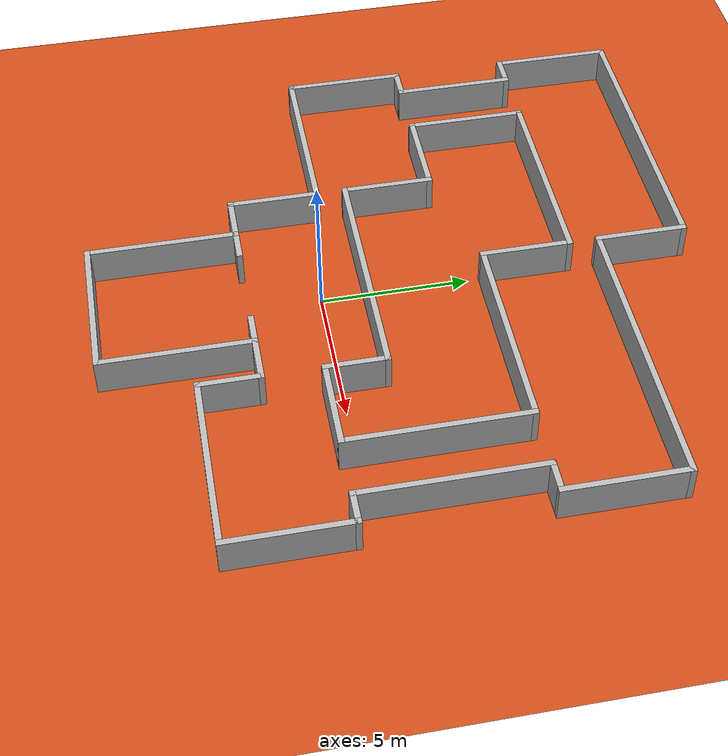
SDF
<?xml version="1.0" ?>
<sdf version="1.6">
  <world name="mars_zigzag_watertight">

    <physics name="1ms" type="ignored"><max_step_size>0.001</max_step_size><real_time_factor>1.0</real_time_factor></physics>
    <light type="directional" name="sun"><cast_shadows>true</cast_shadows><pose>0 0 10 0 0 0</pose><diffuse>0.9 0.4 0.2 1</diffuse><specular>0.2 0.1 0.1 1</specular><direction>-1 -1 -1</direction></light>

    <model name="ground_plane">
      <static>true</static>
      <link name="link">
        <collision name="c"><geometry><plane><normal>0 0 1</normal><size>100 100</size></plane></geometry></collision>
        <visual name="v"><geometry><plane><normal>0 0 1</normal><size>100 100</size></plane></geometry><material><ambient>0.4 0.2 0.1 1</ambient><diffuse>0.8 0.3 0.1 1</diffuse></material></visual>
      </link>
    </model>

    <model name="spawn_room">
      <static>true</static>
      <model name="rm_s"><pose>0 -7.5 0.5 0 0 0</pose><link name="l"><collision name="c"><geometry><box><size>5.2 0.2 1.5</size></box></geometry></collision><visual name="v"><geometry><box><size>5.2 0.2 1.5</size></box></geometry></visual></link></model>
      <model name="rm_w"><pose>-2.5 -5 0.5 0 0 1.5708</pose><link name="l"><collision name="c"><geometry><box><size>5.2 0.2 1.5</size></box></geometry></collision><visual name="v"><geometry><box><size>5.2 0.2 1.5</size></box></geometry></visual></link></model>
      <model name="rm_e"><pose>2.5 -5 0.5 0 0 1.5708</pose><link name="l"><collision name="c"><geometry><box><size>5.2 0.2 1.5</size></box></geometry></collision><visual name="v"><geometry><box><size>5.2 0.2 1.5</size></box></geometry></visual></link></model>
      <model name="rm_n_l"><pose>-2 -2.5 0.5 0 0 0</pose><link name="l"><collision name="c"><geometry><box><size>1.2 0.2 1.5</size></box></geometry></collision><visual name="v"><geometry><box><size>1.2 0.2 1.5</size></box></geometry></visual></link></model>

      <model name="rm_n_r"><pose>2 -2.5 0.5 0 0 0</pose><link name="l"><collision name="c"><geometry><box><size>1.2 0.2 1.5</size></box></geometry></collision><visual name="v"><geometry><box><size>1.2 0.2 1.5</size></box></geometry></visual></link></model>
    </model>

    <model name="hallway_1">
      <static>true</static>
      <model name="h1_mid_n"><pose>0 1.5 0.5 0 0 0</pose><link name="l"><collision name="c"><geometry><box><size>8.2 0.2 1.5</size></box></geometry></collision><visual name="v"><geometry><box><size>8.2 0.2 1.5</size></box></geometry></visual></link></model>
      <model name="h1_mid_s_l"><pose>-3.25 -2.5 0.5 0 0 0</pose><link name="l"><collision name="c"><geometry><box><size>1.7 0.2 1.5</size></box></geometry></collision><visual name="v"><geometry><box><size>1.7 0.2 1.5</size></box></geometry></visual></link></model>
      <model name="h1_mid_s_r"><pose>3.25 -2.5 0.5 0 0 0</pose><link name="l"><collision name="c"><geometry><box><size>1.7 0.2 1.5</size></box></geometry></collision><visual name="v"><geometry><box><size>1.7 0.2 1.5</size></box></geometry></visual></link></model>

      <model name="h1_zig_w_s"><pose>-4 -1 0.5 0 0 1.5708</pose><link name="l"><collision name="c"><geometry><box><size>3.2 0.2 1.5</size></box></geometry></collision><visual name="v"><geometry><box><size>3.2 0.2 1.5</size></box></geometry></visual></link></model>
      <model name="h1_zig_w_n"><pose>-4 3 0.5 0 0 1.5708</pose><link name="l"><collision name="c"><geometry><box><size>3.2 0.2 1.5</size></box></geometry></collision><visual name="v"><geometry><box><size>3.2 0.2 1.5</size></box></geometry></visual></link></model>
      <model name="h1_zig_e_s"><pose>4 -3.5 0.5 0 0 1.5708</pose><link name="l"><collision name="c"><geometry><box><size>2.2 0.2 1.5</size></box></geometry></collision><visual name="v"><geometry><box><size>2.2 0.2 1.5</size></box></geometry></visual></link></model>
      <model name="h1_zig_e_n"><pose>4 0.5 0.5 0 0 1.5708</pose><link name="l"><collision name="c"><geometry><box><size>2.2 0.2 1.5</size></box></geometry></collision><visual name="v"><geometry><box><size>2.2 0.2 1.5</size></box></geometry></visual></link></model>

      <model name="h1_w_s"><pose>-7 0.5 0.5 0 0 0</pose><link name="l"><collision name="c"><geometry><box><size>6.2 0.2 1.5</size></box></geometry></collision><visual name="v"><geometry><box><size>6.2 0.2 1.5</size></box></geometry></visual></link></model>
      <model name="h1_w_n_l"><pose>-9.5 4.5 0.5 0 0 0</pose><link name="l"><collision name="c"><geometry><box><size>1.2 0.2 1.5</size></box></geometry></collision><visual name="v"><geometry><box><size>1.2 0.2 1.5</size></box></geometry></visual></link></model>
      <model name="h1_w_n_r"><pose>-5.5 4.5 0.5 0 0 0</pose><link name="l"><collision name="c"><geometry><box><size>3.2 0.2 1.5</size></box></geometry></collision><visual name="v"><geometry><box><size>3.2 0.2 1.5</size></box></geometry></visual></link></model>
      <model name="h1_cap_w"><pose>-10 2.5 0.5 0 0 1.5708</pose><link name="l"><collision name="c"><geometry><box><size>4.2 0.2 1.5</size></box></geometry></collision><visual name="v"><geometry><box><size>4.2 0.2 1.5</size></box></geometry></visual></link></model>

      <model name="h1_e_s"><pose>7 -4.5 0.5 0 0 0</pose><link name="l"><collision name="c"><geometry><box><size>6.2 0.2 1.5</size></box></geometry></collision><visual name="v"><geometry><box><size>6.2 0.2 1.5</size></box></geometry></visual></link></model>
      <model name="h1_e_n_l"><pose>5.5 -0.5 0.5 0 0 0</pose><link name="l"><collision name="c"><geometry><box><size>3.2 0.2 1.5</size></box></geometry></collision><visual name="v"><geometry><box><size>3.2 0.2 1.5</size></box></geometry></visual></link></model>
      <model name="h1_e_n_r"><pose>9.5 -0.5 0.5 0 0 0</pose><link name="l"><collision name="c"><geometry><box><size>1.2 0.2 1.5</size></box></geometry></collision><visual name="v"><geometry><box><size>1.2 0.2 1.5</size></box></geometry></visual></link></model>
      <model name="h1_cap_e"><pose>10 -2.5 0.5 0 0 1.5708</pose><link name="l"><collision name="c"><geometry><box><size>4.2 0.2 1.5</size></box></geometry></collision><visual name="v"><geometry><box><size>4.2 0.2 1.5</size></box></geometry></visual></link></model>
    </model>

    <model name="connectors">
      <static>true</static>
      <model name="conn_w_l"><pose>-9 6.5 0.5 0 0 1.5708</pose><link name="l"><collision name="c"><geometry><box><size>4.2 0.2 1.5</size></box></geometry></collision><visual name="v"><geometry><box><size>4.2 0.2 1.5</size></box></geometry></visual></link></model>
      <model name="conn_w_r"><pose>-7 6.5 0.5 0 0 1.5708</pose><link name="l"><collision name="c"><geometry><box><size>4.2 0.2 1.5</size></box></geometry></collision><visual name="v"><geometry><box><size>4.2 0.2 1.5</size></box></geometry></visual></link></model>
      <model name="conn_e_l"><pose>7 2.5 0.5 0 0 1.5708</pose><link name="l"><collision name="c"><geometry><box><size>6.2 0.2 1.5</size></box></geometry></collision><visual name="v"><geometry><box><size>6.2 0.2 1.5</size></box></geometry></visual></link></model>
      <model name="conn_e_r"><pose>9 2.5 0.5 0 0 1.5708</pose><link name="l"><collision name="c"><geometry><box><size>6.2 0.2 1.5</size></box></geometry></collision><visual name="v"><geometry><box><size>6.2 0.2 1.5</size></box></geometry></visual></link></model>
    </model>

    <model name="hallway_2">
      <static>true</static>
      <model name="h2_w_s_l"><pose>-9.5 8.5 0.5 0 0 0</pose><link name="l"><collision name="c"><geometry><box><size>1.2 0.2 1.5</size></box></geometry></collision><visual name="v"><geometry><box><size>1.2 0.2 1.5</size></box></geometry></visual></link></model>
      <model name="h2_w_s_r"><pose>-3.5 8.5 0.5 0 0 0</pose><link name="l"><collision name="c"><geometry><box><size>7.2 0.2 1.5</size></box></geometry></collision><visual name="v"><geometry><box><size>7.2 0.2 1.5</size></box></geometry></visual></link></model>
      <model name="h2_w_n"><pose>-5 12.5 0.5 0 0 0</pose><link name="l"><collision name="c"><geometry><box><size>10.2 0.2 1.5</size></box></geometry></collision><visual name="v"><geometry><box><size>10.2 0.2 1.5</size></box></geometry></visual></link></model>
      <model name="h2_cap_w"><pose>-10 10.5 0.5 0 0 1.5708</pose><link name="l"><collision name="c"><geometry><box><size>4.2 0.2 1.5</size></box></geometry></collision><visual name="v"><geometry><box><size>4.2 0.2 1.5</size></box></geometry></visual></link></model>

      <model name="h2_e_s_l"><pose>3.5 5.5 0.5 0 0 0</pose><link name="l"><collision name="c"><geometry><box><size>7.2 0.2 1.5</size></box></geometry></collision><visual name="v"><geometry><box><size>7.2 0.2 1.5</size></box></geometry></visual></link></model>
      <model name="h2_e_s_r"><pose>9.5 5.5 0.5 0 0 0</pose><link name="l"><collision name="c"><geometry><box><size>1.2 0.2 1.5</size></box></geometry></collision><visual name="v"><geometry><box><size>1.2 0.2 1.5</size></box></geometry></visual></link></model>
      <model name="h2_e_n"><pose>5 9.5 0.5 0 0 0</pose><link name="l"><collision name="c"><geometry><box><size>10.2 0.2 1.5</size></box></geometry></collision><visual name="v"><geometry><box><size>10.2 0.2 1.5</size></box></geometry></visual></link></model>
      <model name="h2_cap_e"><pose>10 7.5 0.5 0 0 1.5708</pose><link name="l"><collision name="c"><geometry><box><size>4.2 0.2 1.5</size></box></geometry></collision><visual name="v"><geometry><box><size>4.2 0.2 1.5</size></box></geometry></visual></link></model>

      <model name="h2_zig_s"><pose>0 7 0.5 0 0 1.5708</pose><link name="l"><collision name="c"><geometry><box><size>3.2 0.2 1.5</size></box></geometry></collision><visual name="v"><geometry><box><size>3.2 0.2 1.5</size></box></geometry></visual></link></model>
      <model name="h2_zig_n"><pose>0 11 0.5 0 0 1.5708</pose><link name="l"><collision name="c"><geometry><box><size>3.2 0.2 1.5</size></box></geometry></collision><visual name="v"><geometry><box><size>3.2 0.2 1.5</size></box></geometry></visual></link></model>
    </model>

    <plugin filename="gz-sim-physics-system" name="gz::sim::systems::Physics"/>
    <plugin filename="gz-sim-user-commands-system" name="gz::sim::systems::UserCommands"/>
    <plugin filename="gz-sim-scene-broadcaster-system" name="gz::sim::systems::SceneBroadcaster"/>
    <plugin filename="gz-sim-sensors-system" name="gz::sim::systems::Sensors"><render_engine>ogre2</render_engine></plugin>
  </world>
</sdf>
